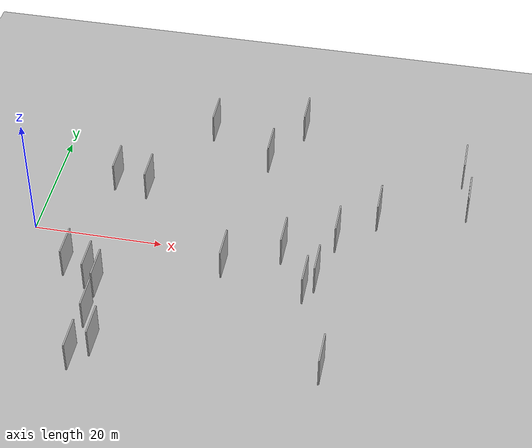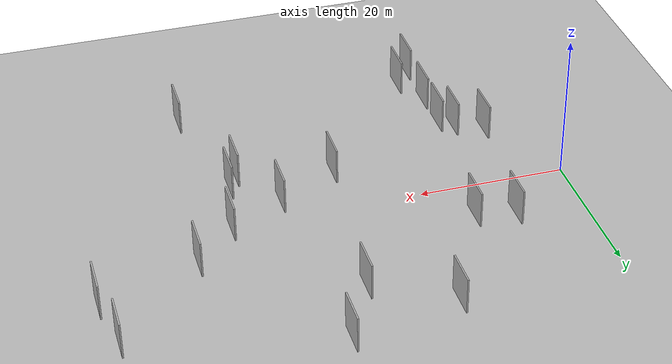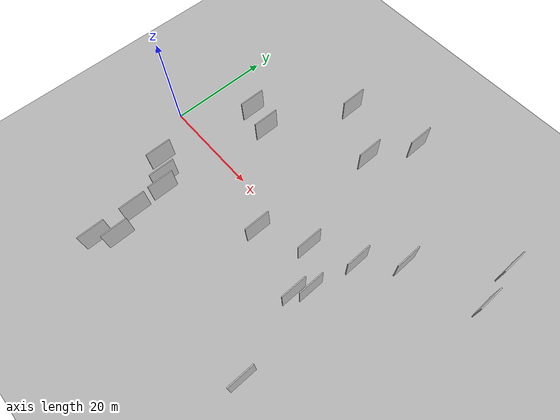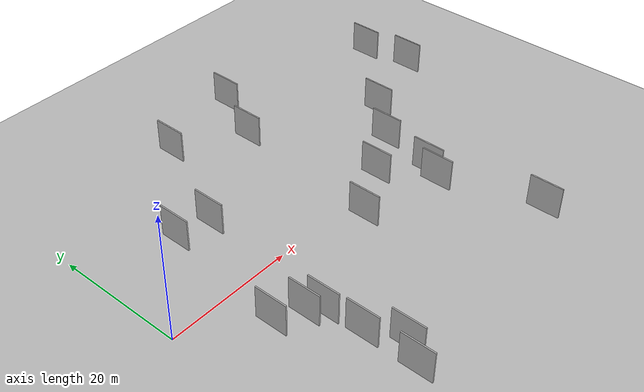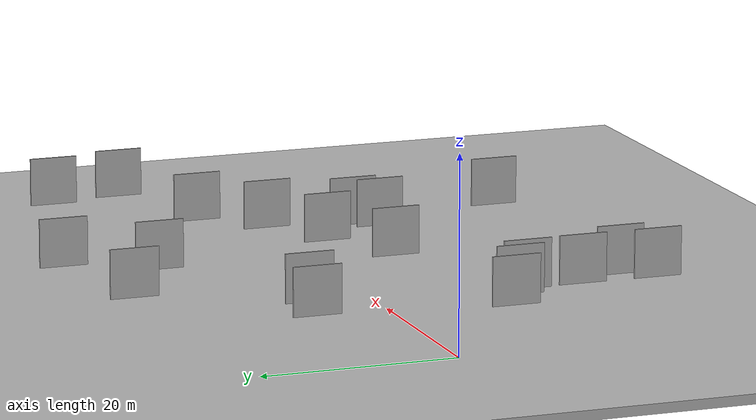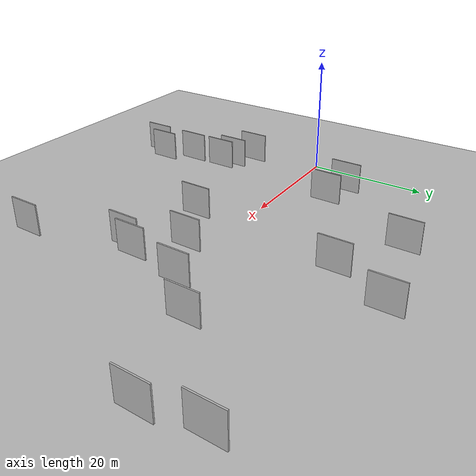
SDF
<?xml version="1.0" encoding="utf-8"?>

<sdf version="1.6">

   <world name="default">

      <gui fullscreen="0">

         <camera name="user_camera">

            <pose>-15 0 4.57585 0 0 0</pose>

            <view_controller>orbit</view_controller>

         </camera>

      </gui>

      <scene>

         <sky>

           <clouds>

             <speed>12</speed>

           </clouds>

         </sky>

         <ambient>0.4 0.4 0.4 1</ambient>

         <background>0.7 0.7 0.7 1</background>

         <shadows>1</shadows>

      </scene>

      <gravity>0 0 -9.8066</gravity>

      <magnetic_field>6e-06 2.3e-05 -4.2e-05</magnetic_field>

      <physics default="0" name="default_physics" type="ode">

         <ode>

            <solver>

               <type>quick</type>

               <iters>10</iters>

               <sor>1.0</sor>

               <use_dynamic_moi_rescaling>0</use_dynamic_moi_rescaling>

            </solver>

            <constraints>

               <cfm>0</cfm>

               <erp>0.2</erp>

               <contact_max_correcting_vel>100</contact_max_correcting_vel>

               <contact_surface_layer>0.001</contact_surface_layer>

            </constraints>

         </ode>

         <max_step_size>0.004</max_step_size>

         <real_time_factor>1</real_time_factor>

         <real_time_update_rate>250</real_time_update_rate>

      </physics>

      <light name="sun" type="directional">

         <cast_shadows>1</cast_shadows>

         <pose>0 0 10 0 0 0</pose>

         <diffuse>0.8 0.8 0.8 1</diffuse>

         <specular>0.2 0.2 0.2 1</specular>

         <attenuation>

            <range>1000</range>

            <constant>0.9</constant>

            <linear>0.01</linear>

            <quadratic>0.001</quadratic>

         </attenuation>

         <direction>-0.5 0.1 -0.9</direction>

      </light>

      <include>

         <name>ground_plane_1</name>

         <uri>model://HANNAS_ground_plane</uri>

         <pose>0 0 0  0 0 0</pose>

      </include>

      <include>

         <name>ground_plane_2</name>

         <uri>model://HANNAS_ground_plane</uri>

         <pose>100 0 0  0 0 0</pose>

      </include>

      <model name="HANNAS_wall_1">

         <static>1</static>

         <pose frame="">30.8269 -4.9778 2.5 0.000000 0.000000 1.570796</pose>

         <link name="link">

            <pose frame="">0 0 2.50 0 0 0</pose>

            <collision name="collision">

               <geometry>

                  <box>

                     <size>5.00 0.2 5.00</size>

                  </box>

               </geometry>

               <max_contacts>10</max_contacts>

               <surface>

                  <contact>

                     <ode/>

                  </contact>

                  <bounce/>

                  <friction>

                     <torsional>

                        <ode/>

                     </torsional>

                     <ode/>

                  </friction>

               </surface>

            </collision>

            <visual name="visual">

               <cast_shadows>0</cast_shadows>

               <geometry>

                  <box>

                     <size>5.00 0.2 5.00</size>

                  </box>

               </geometry>

               <material>

                  <script>

                     <uri>model://HANNAS_wall/materials/scripts</uri>

                     <uri>model://HANNAS_wall/materials/textures</uri>

                     <name>vrc/HANNAS_wall</name>

                  </script>

               </material>

            </visual>

            <self_collide>0</self_collide>

            <enable_wind>0</enable_wind>

            <kinematic>0</kinematic>

         </link>

      </model>

      <model name="HANNAS_wall_2">

         <static>1</static>

         <pose frame="">11.8589 -10.9925 2.5 0.000000 0.000000 1.570796</pose>

         <link name="link">

            <pose frame="">0 0 2.50 0 0 0</pose>

            <collision name="collision">

               <geometry>

                  <box>

                     <size>5.00 0.2 5.00</size>

                  </box>

               </geometry>

               <max_contacts>10</max_contacts>

               <surface>

                  <contact>

                     <ode/>

                  </contact>

                  <bounce/>

                  <friction>

                     <torsional>

                        <ode/>

                     </torsional>

                     <ode/>

                  </friction>

               </surface>

            </collision>

            <visual name="visual">

               <cast_shadows>0</cast_shadows>

               <geometry>

                  <box>

                     <size>5.00 0.2 5.00</size>

                  </box>

               </geometry>

               <material>

                  <script>

                     <uri>model://HANNAS_wall/materials/scripts</uri>

                     <uri>model://HANNAS_wall/materials/textures</uri>

                     <name>vrc/HANNAS_wall</name>

                  </script>

               </material>

            </visual>

            <self_collide>0</self_collide>

            <enable_wind>0</enable_wind>

            <kinematic>0</kinematic>

         </link>

      </model>

      <model name="HANNAS_wall_3">

         <static>1</static>

         <pose frame="">48.2119 -22.3808 2.5 0.000000 0.000000 1.570796</pose>

         <link name="link">

            <pose frame="">0 0 2.50 0 0 0</pose>

            <collision name="collision">

               <geometry>

                  <box>

                     <size>5.00 0.2 5.00</size>

                  </box>

               </geometry>

               <max_contacts>10</max_contacts>

               <surface>

                  <contact>

                     <ode/>

                  </contact>

                  <bounce/>

                  <friction>

                     <torsional>

                        <ode/>

                     </torsional>

                     <ode/>

                  </friction>

               </surface>

            </collision>

            <visual name="visual">

               <cast_shadows>0</cast_shadows>

               <geometry>

                  <box>

                     <size>5.00 0.2 5.00</size>

                  </box>

               </geometry>

               <material>

                  <script>

                     <uri>model://HANNAS_wall/materials/scripts</uri>

                     <uri>model://HANNAS_wall/materials/textures</uri>

                     <name>vrc/HANNAS_wall</name>

                  </script>

               </material>

            </visual>

            <self_collide>0</self_collide>

            <enable_wind>0</enable_wind>

            <kinematic>0</kinematic>

         </link>

      </model>

      <model name="HANNAS_wall_4">

         <static>1</static>

         <pose frame="">63.8481 21.2241 2.5 0.000000 0.000000 1.570796</pose>

         <link name="link">

            <pose frame="">0 0 2.50 0 0 0</pose>

            <collision name="collision">

               <geometry>

                  <box>

                     <size>5.00 0.2 5.00</size>

                  </box>

               </geometry>

               <max_contacts>10</max_contacts>

               <surface>

                  <contact>

                     <ode/>

                  </contact>

                  <bounce/>

                  <friction>

                     <torsional>

                        <ode/>

                     </torsional>

                     <ode/>

                  </friction>

               </surface>

            </collision>

            <visual name="visual">

               <cast_shadows>0</cast_shadows>

               <geometry>

                  <box>

                     <size>5.00 0.2 5.00</size>

                  </box>

               </geometry>

               <material>

                  <script>

                     <uri>model://HANNAS_wall/materials/scripts</uri>

                     <uri>model://HANNAS_wall/materials/textures</uri>

                     <name>vrc/HANNAS_wall</name>

                  </script>

               </material>

            </visual>

            <self_collide>0</self_collide>

            <enable_wind>0</enable_wind>

            <kinematic>0</kinematic>

         </link>

      </model>

      <model name="HANNAS_wall_5">

         <static>1</static>

         <pose frame="">10.6668 10.4937 2.5 0.000000 0.000000 1.570796</pose>

         <link name="link">

            <pose frame="">0 0 2.50 0 0 0</pose>

            <collision name="collision">

               <geometry>

                  <box>

                     <size>5.00 0.2 5.00</size>

                  </box>

               </geometry>

               <max_contacts>10</max_contacts>

               <surface>

                  <contact>

                     <ode/>

                  </contact>

                  <bounce/>

                  <friction>

                     <torsional>

                        <ode/>

                     </torsional>

                     <ode/>

                  </friction>

               </surface>

            </collision>

            <visual name="visual">

               <cast_shadows>0</cast_shadows>

               <geometry>

                  <box>

                     <size>5.00 0.2 5.00</size>

                  </box>

               </geometry>

               <material>

                  <script>

                     <uri>model://HANNAS_wall/materials/scripts</uri>

                     <uri>model://HANNAS_wall/materials/textures</uri>

                     <name>vrc/HANNAS_wall</name>

                  </script>

               </material>

            </visual>

            <self_collide>0</self_collide>

            <enable_wind>0</enable_wind>

            <kinematic>0</kinematic>

         </link>

      </model>

      <model name="HANNAS_wall_6">

         <static>1</static>

         <pose frame="">33.3438 19.2492 2.5 0.000000 0.000000 1.570796</pose>

         <link name="link">

            <pose frame="">0 0 2.50 0 0 0</pose>

            <collision name="collision">

               <geometry>

                  <box>

                     <size>5.00 0.2 5.00</size>

                  </box>

               </geometry>

               <max_contacts>10</max_contacts>

               <surface>

                  <contact>

                     <ode/>

                  </contact>

                  <bounce/>

                  <friction>

                     <torsional>

                        <ode/>

                     </torsional>

                     <ode/>

                  </friction>

               </surface>

            </collision>

            <visual name="visual">

               <cast_shadows>0</cast_shadows>

               <geometry>

                  <box>

                     <size>5.00 0.2 5.00</size>

                  </box>

               </geometry>

               <material>

                  <script>

                     <uri>model://HANNAS_wall/materials/scripts</uri>

                     <uri>model://HANNAS_wall/materials/textures</uri>

                     <name>vrc/HANNAS_wall</name>

                  </script>

               </material>

            </visual>

            <self_collide>0</self_collide>

            <enable_wind>0</enable_wind>

            <kinematic>0</kinematic>

         </link>

      </model>

      <model name="HANNAS_wall_7">

         <static>1</static>

         <pose frame="">15.9261 9.4686 2.5 0.000000 0.000000 1.570796</pose>

         <link name="link">

            <pose frame="">0 0 2.50 0 0 0</pose>

            <collision name="collision">

               <geometry>

                  <box>

                     <size>5.00 0.2 5.00</size>

                  </box>

               </geometry>

               <max_contacts>10</max_contacts>

               <surface>

                  <contact>

                     <ode/>

                  </contact>

                  <bounce/>

                  <friction>

                     <torsional>

                        <ode/>

                     </torsional>

                     <ode/>

                  </friction>

               </surface>

            </collision>

            <visual name="visual">

               <cast_shadows>0</cast_shadows>

               <geometry>

                  <box>

                     <size>5.00 0.2 5.00</size>

                  </box>

               </geometry>

               <material>

                  <script>

                     <uri>model://HANNAS_wall/materials/scripts</uri>

                     <uri>model://HANNAS_wall/materials/textures</uri>

                     <name>vrc/HANNAS_wall</name>

                  </script>

               </material>

            </visual>

            <self_collide>0</self_collide>

            <enable_wind>0</enable_wind>

            <kinematic>0</kinematic>

         </link>

      </model>

      <model name="HANNAS_wall_8">

         <static>1</static>

         <pose frame="">39.0118 -0.5778 2.5 0.000000 0.000000 1.570796</pose>

         <link name="link">

            <pose frame="">0 0 2.50 0 0 0</pose>

            <collision name="collision">

               <geometry>

                  <box>

                     <size>5.00 0.2 5.00</size>

                  </box>

               </geometry>

               <max_contacts>10</max_contacts>

               <surface>

                  <contact>

                     <ode/>

                  </contact>

                  <bounce/>

                  <friction>

                     <torsional>

                        <ode/>

                     </torsional>

                     <ode/>

                  </friction>

               </surface>

            </collision>

            <visual name="visual">

               <cast_shadows>0</cast_shadows>

               <geometry>

                  <box>

                     <size>5.00 0.2 5.00</size>

                  </box>

               </geometry>

               <material>

                  <script>

                     <uri>model://HANNAS_wall/materials/scripts</uri>

                     <uri>model://HANNAS_wall/materials/textures</uri>

                     <name>vrc/HANNAS_wall</name>

                  </script>

               </material>

            </visual>

            <self_collide>0</self_collide>

            <enable_wind>0</enable_wind>

            <kinematic>0</kinematic>

         </link>

      </model>

      <model name="HANNAS_wall_9">

         <static>1</static>

         <pose frame="">23.2957 25.0050 2.5 0.000000 0.000000 1.570796</pose>

         <link name="link">

            <pose frame="">0 0 2.50 0 0 0</pose>

            <collision name="collision">

               <geometry>

                  <box>

                     <size>5.00 0.2 5.00</size>

                  </box>

               </geometry>

               <max_contacts>10</max_contacts>

               <surface>

                  <contact>

                     <ode/>

                  </contact>

                  <bounce/>

                  <friction>

                     <torsional>

                        <ode/>

                     </torsional>

                     <ode/>

                  </friction>

               </surface>

            </collision>

            <visual name="visual">

               <cast_shadows>0</cast_shadows>

               <geometry>

                  <box>

                     <size>5.00 0.2 5.00</size>

                  </box>

               </geometry>

               <material>

                  <script>

                     <uri>model://HANNAS_wall/materials/scripts</uri>

                     <uri>model://HANNAS_wall/materials/textures</uri>

                     <name>vrc/HANNAS_wall</name>

                  </script>

               </material>

            </visual>

            <self_collide>0</self_collide>

            <enable_wind>0</enable_wind>

            <kinematic>0</kinematic>

         </link>

      </model>

      <model name="HANNAS_wall_10">

         <static>1</static>

         <pose frame="">8.0486 -9.0642 2.5 0.000000 0.000000 1.570796</pose>

         <link name="link">

            <pose frame="">0 0 2.50 0 0 0</pose>

            <collision name="collision">

               <geometry>

                  <box>

                     <size>5.00 0.2 5.00</size>

                  </box>

               </geometry>

               <max_contacts>10</max_contacts>

               <surface>

                  <contact>

                     <ode/>

                  </contact>

                  <bounce/>

                  <friction>

                     <torsional>

                        <ode/>

                     </torsional>

                     <ode/>

                  </friction>

               </surface>

            </collision>

            <visual name="visual">

               <cast_shadows>0</cast_shadows>

               <geometry>

                  <box>

                     <size>5.00 0.2 5.00</size>

                  </box>

               </geometry>

               <material>

                  <script>

                     <uri>model://HANNAS_wall/materials/scripts</uri>

                     <uri>model://HANNAS_wall/materials/textures</uri>

                     <name>vrc/HANNAS_wall</name>

                  </script>

               </material>

            </visual>

            <self_collide>0</self_collide>

            <enable_wind>0</enable_wind>

            <kinematic>0</kinematic>

         </link>

      </model>

      <model name="HANNAS_wall_11">

         <static>1</static>

         <pose frame="">37.6533 27.9439 2.5 0.000000 0.000000 1.570796</pose>

         <link name="link">

            <pose frame="">0 0 2.50 0 0 0</pose>

            <collision name="collision">

               <geometry>

                  <box>

                     <size>5.00 0.2 5.00</size>

                  </box>

               </geometry>

               <max_contacts>10</max_contacts>

               <surface>

                  <contact>

                     <ode/>

                  </contact>

                  <bounce/>

                  <friction>

                     <torsional>

                        <ode/>

                     </torsional>

                     <ode/>

                  </friction>

               </surface>

            </collision>

            <visual name="visual">

               <cast_shadows>0</cast_shadows>

               <geometry>

                  <box>

                     <size>5.00 0.2 5.00</size>

                  </box>

               </geometry>

               <material>

                  <script>

                     <uri>model://HANNAS_wall/materials/scripts</uri>

                     <uri>model://HANNAS_wall/materials/textures</uri>

                     <name>vrc/HANNAS_wall</name>

                  </script>

               </material>

            </visual>

            <self_collide>0</self_collide>

            <enable_wind>0</enable_wind>

            <kinematic>0</kinematic>

         </link>

      </model>

      <model name="HANNAS_wall_12">

         <static>1</static>

         <pose frame="">13.8016 -18.4092 2.5 0.000000 0.000000 1.570796</pose>

         <link name="link">

            <pose frame="">0 0 2.50 0 0 0</pose>

            <collision name="collision">

               <geometry>

                  <box>

                     <size>5.00 0.2 5.00</size>

                  </box>

               </geometry>

               <max_contacts>10</max_contacts>

               <surface>

                  <contact>

                     <ode/>

                  </contact>

                  <bounce/>

                  <friction>

                     <torsional>

                        <ode/>

                     </torsional>

                     <ode/>

                  </friction>

               </surface>

            </collision>

            <visual name="visual">

               <cast_shadows>0</cast_shadows>

               <geometry>

                  <box>

                     <size>5.00 0.2 5.00</size>

                  </box>

               </geometry>

               <material>

                  <script>

                     <uri>model://HANNAS_wall/materials/scripts</uri>

                     <uri>model://HANNAS_wall/materials/textures</uri>

                     <name>vrc/HANNAS_wall</name>

                  </script>

               </material>

            </visual>

            <self_collide>0</self_collide>

            <enable_wind>0</enable_wind>

            <kinematic>0</kinematic>

         </link>

      </model>

      <model name="HANNAS_wall_13">

         <static>1</static>

         <pose frame="">13.6324 -12.4716 2.5 0.000000 0.000000 1.570796</pose>

         <link name="link">

            <pose frame="">0 0 2.50 0 0 0</pose>

            <collision name="collision">

               <geometry>

                  <box>

                     <size>5.00 0.2 5.00</size>

                  </box>

               </geometry>

               <max_contacts>10</max_contacts>

               <surface>

                  <contact>

                     <ode/>

                  </contact>

                  <bounce/>

                  <friction>

                     <torsional>

                        <ode/>

                     </torsional>

                     <ode/>

                  </friction>

               </surface>

            </collision>

            <visual name="visual">

               <cast_shadows>0</cast_shadows>

               <geometry>

                  <box>

                     <size>5.00 0.2 5.00</size>

                  </box>

               </geometry>

               <material>

                  <script>

                     <uri>model://HANNAS_wall/materials/scripts</uri>

                     <uri>model://HANNAS_wall/materials/textures</uri>

                     <name>vrc/HANNAS_wall</name>

                  </script>

               </material>

            </visual>

            <self_collide>0</self_collide>

            <enable_wind>0</enable_wind>

            <kinematic>0</kinematic>

         </link>

      </model>

      <model name="HANNAS_wall_14">

         <static>1</static>

         <pose frame="">51.9591 9.2337 2.5 0.000000 0.000000 1.570796</pose>

         <link name="link">

            <pose frame="">0 0 2.50 0 0 0</pose>

            <collision name="collision">

               <geometry>

                  <box>

                     <size>5.00 0.2 5.00</size>

                  </box>

               </geometry>

               <max_contacts>10</max_contacts>

               <surface>

                  <contact>

                     <ode/>

                  </contact>

                  <bounce/>

                  <friction>

                     <torsional>

                        <ode/>

                     </torsional>

                     <ode/>

                  </friction>

               </surface>

            </collision>

            <visual name="visual">

               <cast_shadows>0</cast_shadows>

               <geometry>

                  <box>

                     <size>5.00 0.2 5.00</size>

                  </box>

               </geometry>

               <material>

                  <script>

                     <uri>model://HANNAS_wall/materials/scripts</uri>

                     <uri>model://HANNAS_wall/materials/textures</uri>

                     <name>vrc/HANNAS_wall</name>

                  </script>

               </material>

            </visual>

            <self_collide>0</self_collide>

            <enable_wind>0</enable_wind>

            <kinematic>0</kinematic>

         </link>

      </model>

      <model name="HANNAS_wall_15">

         <static>1</static>

         <pose frame="">13.7365 -26.3985 2.5 0.000000 0.000000 1.570796</pose>

         <link name="link">

            <pose frame="">0 0 2.50 0 0 0</pose>

            <collision name="collision">

               <geometry>

                  <box>

                     <size>5.00 0.2 5.00</size>

                  </box>

               </geometry>

               <max_contacts>10</max_contacts>

               <surface>

                  <contact>

                     <ode/>

                  </contact>

                  <bounce/>

                  <friction>

                     <torsional>

                        <ode/>

                     </torsional>

                     <ode/>

                  </friction>

               </surface>

            </collision>

            <visual name="visual">

               <cast_shadows>0</cast_shadows>

               <geometry>

                  <box>

                     <size>5.00 0.2 5.00</size>

                  </box>

               </geometry>

               <material>

                  <script>

                     <uri>model://HANNAS_wall/materials/scripts</uri>

                     <uri>model://HANNAS_wall/materials/textures</uri>

                     <name>vrc/HANNAS_wall</name>

                  </script>

               </material>

            </visual>

            <self_collide>0</self_collide>

            <enable_wind>0</enable_wind>

            <kinematic>0</kinematic>

         </link>

      </model>

      <model name="HANNAS_wall_16">

         <static>1</static>

         <pose frame="">65.1398 13.6905 2.5 0.000000 0.000000 1.570796</pose>

         <link name="link">

            <pose frame="">0 0 2.50 0 0 0</pose>

            <collision name="collision">

               <geometry>

                  <box>

                     <size>5.00 0.2 5.00</size>

                  </box>

               </geometry>

               <max_contacts>10</max_contacts>

               <surface>

                  <contact>

                     <ode/>

                  </contact>

                  <bounce/>

                  <friction>

                     <torsional>

                        <ode/>

                     </torsional>

                     <ode/>

                  </friction>

               </surface>

            </collision>

            <visual name="visual">

               <cast_shadows>0</cast_shadows>

               <geometry>

                  <box>

                     <size>5.00 0.2 5.00</size>

                  </box>

               </geometry>

               <material>

                  <script>

                     <uri>model://HANNAS_wall/materials/scripts</uri>

                     <uri>model://HANNAS_wall/materials/textures</uri>

                     <name>vrc/HANNAS_wall</name>

                  </script>

               </material>

            </visual>

            <self_collide>0</self_collide>

            <enable_wind>0</enable_wind>

            <kinematic>0</kinematic>

         </link>

      </model>

      <model name="HANNAS_wall_17">

         <static>1</static>

         <pose frame="">43.3980 -7.8608 2.5 0.000000 0.000000 1.570796</pose>

         <link name="link">

            <pose frame="">0 0 2.50 0 0 0</pose>

            <collision name="collision">

               <geometry>

                  <box>

                     <size>5.00 0.2 5.00</size>

                  </box>

               </geometry>

               <max_contacts>10</max_contacts>

               <surface>

                  <contact>

                     <ode/>

                  </contact>

                  <bounce/>

                  <friction>

                     <torsional>

                        <ode/>

                     </torsional>

                     <ode/>

                  </friction>

               </surface>

            </collision>

            <visual name="visual">

               <cast_shadows>0</cast_shadows>

               <geometry>

                  <box>

                     <size>5.00 0.2 5.00</size>

                  </box>

               </geometry>

               <material>

                  <script>

                     <uri>model://HANNAS_wall/materials/scripts</uri>

                     <uri>model://HANNAS_wall/materials/textures</uri>

                     <name>vrc/HANNAS_wall</name>

                  </script>

               </material>

            </visual>

            <self_collide>0</self_collide>

            <enable_wind>0</enable_wind>

            <kinematic>0</kinematic>

         </link>

      </model>

      <model name="HANNAS_wall_18">

         <static>1</static>

         <pose frame="">44.7562 -5.3839 2.5 0.000000 0.000000 1.570796</pose>

         <link name="link">

            <pose frame="">0 0 2.50 0 0 0</pose>

            <collision name="collision">

               <geometry>

                  <box>

                     <size>5.00 0.2 5.00</size>

                  </box>

               </geometry>

               <max_contacts>10</max_contacts>

               <surface>

                  <contact>

                     <ode/>

                  </contact>

                  <bounce/>

                  <friction>

                     <torsional>

                        <ode/>

                     </torsional>

                     <ode/>

                  </friction>

               </surface>

            </collision>

            <visual name="visual">

               <cast_shadows>0</cast_shadows>

               <geometry>

                  <box>

                     <size>5.00 0.2 5.00</size>

                  </box>

               </geometry>

               <material>

                  <script>

                     <uri>model://HANNAS_wall/materials/scripts</uri>

                     <uri>model://HANNAS_wall/materials/textures</uri>

                     <name>vrc/HANNAS_wall</name>

                  </script>

               </material>

            </visual>

            <self_collide>0</self_collide>

            <enable_wind>0</enable_wind>

            <kinematic>0</kinematic>

         </link>

      </model>

      <model name="HANNAS_wall_19">

         <static>1</static>

         <pose frame="">46.4545 3.4149 2.5 0.000000 0.000000 1.570796</pose>

         <link name="link">

            <pose frame="">0 0 2.50 0 0 0</pose>

            <collision name="collision">

               <geometry>

                  <box>

                     <size>5.00 0.2 5.00</size>

                  </box>

               </geometry>

               <max_contacts>10</max_contacts>

               <surface>

                  <contact>

                     <ode/>

                  </contact>

                  <bounce/>

                  <friction>

                     <torsional>

                        <ode/>

                     </torsional>

                     <ode/>

                  </friction>

               </surface>

            </collision>

            <visual name="visual">

               <cast_shadows>0</cast_shadows>

               <geometry>

                  <box>

                     <size>5.00 0.2 5.00</size>

                  </box>

               </geometry>

               <material>

                  <script>

                     <uri>model://HANNAS_wall/materials/scripts</uri>

                     <uri>model://HANNAS_wall/materials/textures</uri>

                     <name>vrc/HANNAS_wall</name>

                  </script>

               </material>

            </visual>

            <self_collide>0</self_collide>

            <enable_wind>0</enable_wind>

            <kinematic>0</kinematic>

         </link>

      </model>

      <model name="HANNAS_wall_20">

         <static>1</static>

         <pose frame="">16.0897 -23.3791 2.5 0.000000 0.000000 1.570796</pose>

         <link name="link">

            <pose frame="">0 0 2.50 0 0 0</pose>

            <collision name="collision">

               <geometry>

                  <box>

                     <size>5.00 0.2 5.00</size>

                  </box>

               </geometry>

               <max_contacts>10</max_contacts>

               <surface>

                  <contact>

                     <ode/>

                  </contact>

                  <bounce/>

                  <friction>

                     <torsional>

                        <ode/>

                     </torsional>

                     <ode/>

                  </friction>

               </surface>

            </collision>

            <visual name="visual">

               <cast_shadows>0</cast_shadows>

               <geometry>

                  <box>

                     <size>5.00 0.2 5.00</size>

                  </box>

               </geometry>

               <material>

                  <script>

                     <uri>model://HANNAS_wall/materials/scripts</uri>

                     <uri>model://HANNAS_wall/materials/textures</uri>

                     <name>vrc/HANNAS_wall</name>

                  </script>

               </material>

            </visual>

            <self_collide>0</self_collide>

            <enable_wind>0</enable_wind>

            <kinematic>0</kinematic>

         </link>

      </model>

   </world>

</sdf>

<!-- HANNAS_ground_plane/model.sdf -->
<sdf version="1.4">
<model name="HANNAS_ground_plane">
  <static>true</static>
    <link name="link">
      <collision name="collision">
        <geometry>
          <plane>
            <normal>0 0 1</normal>
            <size>1000 1000</size>
          </plane>
        </geometry>
        <surface>
          <friction>
            <ode>
              <mu>100</mu>
              <mu2>50</mu2>
            </ode>
          </friction>
        </surface>
      </collision>
      <visual name="visual">
        <cast_shadows>false</cast_shadows>
        <geometry>
          <plane>
            <normal>0 0 1</normal>
            <size>1000 1000</size>
          </plane>
        </geometry>
        <material>
          <script>
            <uri>model://HANNAS_ground_plane/materials/scripts/HANNAS_ground_plane.material</uri>
	    <uri>model://HANNAS_ground_plane/materials/textures</uri>
            <name>HANNASGroundPlane/Image</name>
          </script>
        </material>
      </visual>
    </link>
  </model>
</sdf>
